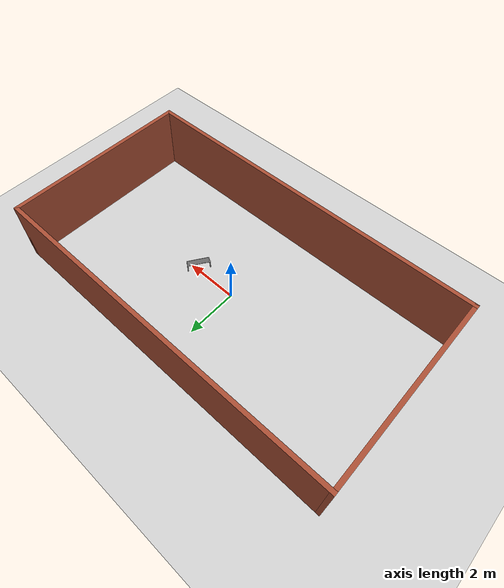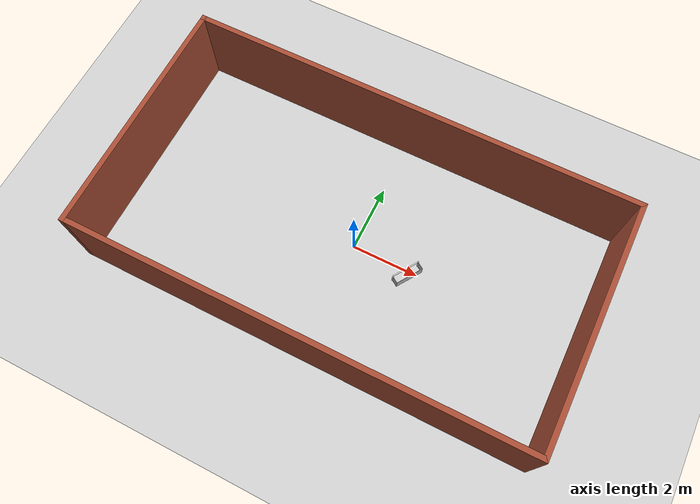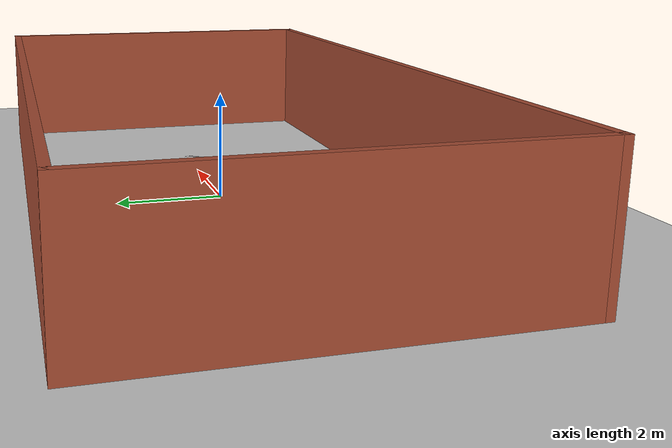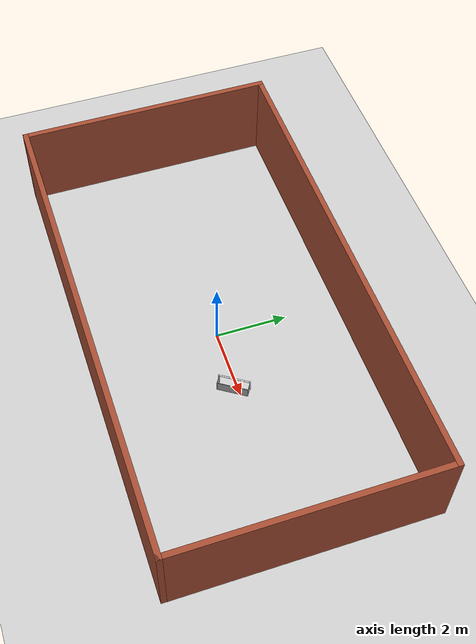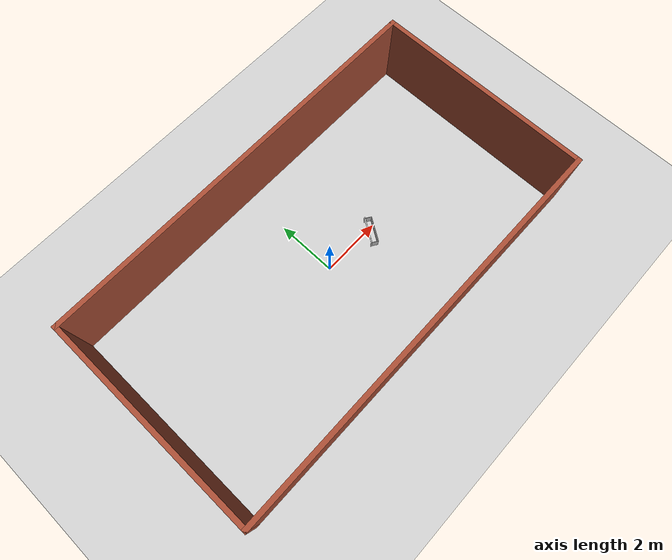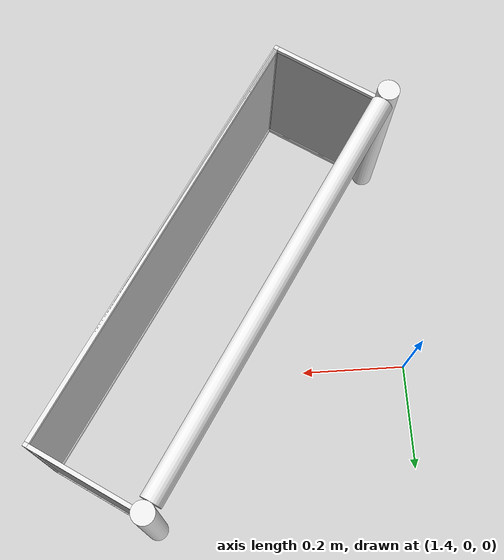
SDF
<sdf version="1.7">
 <world name="default">
  <light name="sun" type="directional">
   <pose>0 0 10 0 -0 0</pose>
   <diffuse>0.8 0.8 0.8 1</diffuse>
   <specular>0.1 0.1 0.1 1</specular>
   <attenuation>
    <range>1000</range>
    <constant>0.9</constant>
    <linear>0.01</linear>
    <quadratic>0.001</quadratic>
   </attenuation>
   <direction>-0.5 0.5 -1</direction>
   <spot><inner_angle>0</inner_angle><outer_angle>0</outer_angle><falloff>0</falloff></spot>
  </light>
  <plugin name="gazebo_ros_state" filename="libgazebo_ros_state.so"/>
  <model name="ground_plane">
   <static>1</static>
   <link name="link">
    <collision name="collision">
     <geometry><plane><normal>0 0 1</normal><size>100 100</size></plane></geometry>
     <surface><friction><ode><mu>100</mu><mu2>50</mu2></ode></friction></surface>
    </collision>
    <visual name="visual">
     <cast_shadows>0</cast_shadows>
     <geometry><plane><normal>0 0 1</normal><size>100 100</size></plane></geometry>
     <material>
      <script><uri>file://media/materials/scripts/gazebo.material</uri><name>Gazebo/Grey</name></script>
     </material>
    </visual>
   </link>
  </model>
  <gravity>0 0 -9.8</gravity>
  <magnetic_field>6e-06 2.3e-05 -4.2e-05</magnetic_field>
  <atmosphere type="adiabatic"/>
  <physics name="default_physics" default="0" type="ode">
   <max_step_size>0.001</max_step_size>
   <real_time_factor>1</real_time_factor>
   <real_time_update_rate>1000</real_time_update_rate>
  </physics>
  <scene><ambient>0.4 0.4 0.4 1</ambient><background>0.7 0.7 0.7 1</background><shadows>1</shadows></scene>
  <spherical_coordinates>
   <surface_model>EARTH_WGS84</surface_model>
   <latitude_deg>0</latitude_deg>
   <longitude_deg>0</longitude_deg>
   <elevation>0</elevation>
   <heading_deg>0</heading_deg>
  </spherical_coordinates>
  <audio><device>default</device></audio>
  <model name="robocup_3d_goal">
   <static>1</static>
   <link name="left_post">
    <pose>0 0.42 0.18 0 -0 0</pose>
    <collision name="collision">
     <geometry><cylinder><radius>0.02</radius><length>0.36</length></cylinder></geometry>
    </collision>
    <visual name="visual">
     <geometry><cylinder><radius>0.02</radius><length>0.36</length></cylinder></geometry>
     <material>
      <script><uri>file://media/materials/scripts/gazebo.material</uri><name>Gazebo/White</name></script>
     </material>
    </visual>
   </link>
   <link name="left_support_horiz_lower">
    <pose>0.12 0.42 0.004 0 -0 0</pose>
    <collision name="collision"><geometry><box><size>0.2 0.008 0.008</size></box></geometry></collision>
    <visual name="visual">
     <geometry><box><size>0.2 0.008 0.008</size></box></geometry>
     <material>
      <script><uri>file://media/materials/scripts/gazebo.material</uri><name>Gazebo/White</name></script>
     </material>
    </visual>
   </link>
   <link name="left_support_horiz_upper">
    <pose>0.12 0.42 0.316 0 -0 0</pose>
    <collision name="collision"><geometry><box><size>0.2 0.008 0.008</size></box></geometry></collision>
    <visual name="visual">
     <geometry><box><size>0.2 0.008 0.008</size></box></geometry>
     <material>
      <script><uri>file://media/materials/scripts/gazebo.material</uri><name>Gazebo/White</name></script>
     </material>
    </visual>
   </link>
   <link name="left_support_vertical">
    <pose>0.224 0.42 0.16 3.14159 1.57079 3.14159</pose>
    <collision name="collision"><geometry><box><size>0.32 0.008 0.008</size></box></geometry></collision>
    <visual name="visual">
     <geometry><box><size>0.32 0.008 0.008</size></box></geometry>
     <material>
      <script><uri>file://media/materials/scripts/gazebo.material</uri><name>Gazebo/White</name></script>
     </material>
    </visual>
   </link>
   <link name="right_support_horiz_lower">
    <pose>0.12 -0.42 0.004 0 -0 0</pose>
    <collision name="collision"><geometry><box><size>0.2 0.008 0.008</size></box></geometry></collision>
    <visual name="visual">
     <geometry><box><size>0.2 0.008 0.008</size></box></geometry>
     <material>
      <script><uri>file://media/materials/scripts/gazebo.material</uri><name>Gazebo/White</name></script>
     </material>
    </visual>
   </link>
   <link name="right_support_horiz_upper">
    <pose>0.12 -0.42 0.316 0 -0 0</pose>
    <collision name="collision"><geometry><box><size>0.2 0.008 0.008</size></box></geometry></collision>
    <visual name="visual">
     <geometry><box><size>0.2 0.008 0.008</size></box></geometry>
     <material>
      <script><uri>file://media/materials/scripts/gazebo.material</uri><name>Gazebo/White</name></script>
     </material>
    </visual>
   </link>
   <link name="right_support_vertical">
    <pose>0.224 -0.42 0.16 3.14159 1.57079 3.14159</pose>
    <collision name="collision"><geometry><box><size>0.32 0.008 0.008</size></box></geometry></collision>
    <visual name="visual">
     <geometry><box><size>0.32 0.008 0.008</size></box></geometry>
     <material>
      <script><uri>file://media/materials/scripts/gazebo.material</uri><name>Gazebo/White</name></script>
     </material>
    </visual>
   </link>
   <link name="center_support_horiz_lower">
    <pose>0.224 0 0.004 3.14159 1.57079 3.14159</pose>
    <collision name="collision"><geometry><box><size>0.008 0.832 0.008</size></box></geometry></collision>
    <visual name="visual">
     <geometry><box><size>0.008 0.832 0.008</size></box></geometry>
     <material>
      <script><uri>file://media/materials/scripts/gazebo.material</uri><name>Gazebo/White</name></script>
     </material>
    </visual>
   </link>
   <link name="center_support_horiz_upper">
    <pose>0.224 0 0.316 3.14159 1.57079 3.14159</pose>
    <collision name="collision"><geometry><box><size>0.008 0.832 0.008</size></box></geometry></collision>
    <visual name="visual">
     <geometry><box><size>0.008 0.832 0.008</size></box></geometry>
     <material>
      <script><uri>file://media/materials/scripts/gazebo.material</uri><name>Gazebo/White</name></script>
     </material>
    </visual>
   </link>
   <link name="right_post">
    <pose>0 -0.42 0.18 0 -0 0</pose>
    <collision name="collision">
     <geometry><cylinder><radius>0.02</radius><length>0.36</length></cylinder></geometry>
    </collision>
    <visual name="visual">
     <geometry><cylinder><radius>0.02</radius><length>0.36</length></cylinder></geometry>
     <material>
      <script><uri>file://media/materials/scripts/gazebo.material</uri><name>Gazebo/White</name></script>
     </material>
    </visual>
   </link>
   <link name="crossbar">
    <pose>0 0 0.34 1.57 1.57 0</pose>
    <collision name="collision">
     <geometry><cylinder><radius>0.02</radius><length>0.8</length></cylinder></geometry>
    </collision>
    <visual name="visual">
     <geometry><cylinder><radius>0.02</radius><length>0.8</length></cylinder></geometry>
     <material>
      <script><uri>file://media/materials/scripts/gazebo.material</uri><name>Gazebo/White</name></script>
     </material>
    </visual>
   </link>
   <link name="center_net">
    <pose>0.224 0 0.16 0 -0 0</pose>
    <collision name="collision"><geometry><box><size>0.004 0.84 0.32</size></box></geometry></collision>
    <visual name="visual">
     <geometry><box><size>0.004 0.84 0.32</size></box></geometry>
     <material>
      <script>
       <uri>model://robocup09_spl_field/materials/scripts/</uri>
       <uri>model://robocup09_spl_field/materials/textures/</uri>
       <name>RoboCup/Net</name>
      </script>
     </material>
    </visual>
   </link>
   <link name="left_net">
    <pose>0.12 0.42 0.16 0 -0 0</pose>
    <collision name="collision"><geometry><box><size>0.2 0.004 0.304</size></box></geometry></collision>
    <visual name="visual">
     <geometry><box><size>0.2 0.004 0.304</size></box></geometry>
     <material>
      <script>
       <uri>model://robocup09_spl_field/materials/scripts/</uri>
       <uri>model://robocup09_spl_field/materials/textures/</uri>
       <name>RoboCup/Net</name>
      </script>
     </material>
    </visual>
   </link>
   <link name="right_net">
    <pose>0.12 -0.42 0.16 0 -0 0</pose>
    <collision name="collision"><geometry><box><size>0.2 0.004 0.304</size></box></geometry></collision>
    <visual name="visual">
     <geometry><box><size>0.2 0.004 0.304</size></box></geometry>
     <material>
      <script>
       <uri>model://robocup09_spl_field/materials/scripts/</uri>
       <uri>model://robocup09_spl_field/materials/textures/</uri>
       <name>RoboCup/Net</name>
      </script>
     </material>
    </visual>
   </link>
   <pose>1.66861 -0.067617 -0 0 0 -0.580855</pose>
  </model>
  <model name="Untitled">
   <pose>0.006718 0.01509 0 0 -0 0</pose>
   <link name="Wall_4">
    <collision name="Wall_4_Collision">
     <geometry><box><size>13.5 0.15 2.5</size></box></geometry>
     <pose>0 0 1.25 0 -0 0</pose>
    </collision>
    <visual name="Wall_4_Visual">
     <pose>0 0 1.25 0 -0 0</pose>
     <geometry><box><size>13.5 0.15 2.5</size></box></geometry>
     <material>
      <script><uri>file://media/materials/scripts/gazebo.material</uri><name>Gazebo/Bricks</name></script>
      <ambient>1 1 1 1</ambient>
     </material>
     <meta><layer>0</layer></meta>
    </visual>
    <pose>0 3.55 0 0 -0 0</pose>
   </link>
   <link name="Wall_5">
    <collision name="Wall_5_Collision">
     <geometry><box><size>7.25 0.15 2.5</size></box></geometry>
     <pose>0 0 1.25 0 -0 0</pose>
    </collision>
    <visual name="Wall_5_Visual">
     <pose>0 0 1.25 0 -0 0</pose>
     <geometry><box><size>7.25 0.15 2.5</size></box></geometry>
     <material>
      <script><uri>file://media/materials/scripts/gazebo.material</uri><name>Gazebo/Bricks</name></script>
      <ambient>1 1 1 1</ambient>
     </material>
     <meta><layer>0</layer></meta>
    </visual>
    <pose>6.675 -0 0 0 -0 -1.5708</pose>
   </link>
   <link name="Wall_6">
    <collision name="Wall_6_Collision">
     <geometry><box><size>13.5 0.15 2.5</size></box></geometry>
     <pose>0 0 1.25 0 -0 0</pose>
    </collision>
    <visual name="Wall_6_Visual">
     <pose>0 0 1.25 0 -0 0</pose>
     <geometry><box><size>13.5 0.15 2.5</size></box></geometry>
     <material>
      <script><uri>file://media/materials/scripts/gazebo.material</uri><name>Gazebo/Bricks</name></script>
      <ambient>1 1 1 1</ambient>
     </material>
     <meta><layer>0</layer></meta>
    </visual>
    <pose>0 -3.55 0 0 -0 3.14159</pose>
   </link>
   <link name="Wall_7">
    <collision name="Wall_7_Collision">
     <geometry><box><size>7.25 0.15 2.5</size></box></geometry>
     <pose>0 0 1.25 0 -0 0</pose>
    </collision>
    <visual name="Wall_7_Visual">
     <pose>0 0 1.25 0 -0 0</pose>
     <geometry><box><size>7.25 0.15 2.5</size></box></geometry>
     <material>
      <script><uri>file://media/materials/scripts/gazebo.material</uri><name>Gazebo/Bricks</name></script>
      <ambient>1 1 1 1</ambient>
     </material>
     <meta><layer>0</layer></meta>
    </visual>
    <pose>-6.675 -0 0 0 -0 1.5708</pose>
   </link>
   <static>1</static>
  </model>
 </world>
</sdf>
